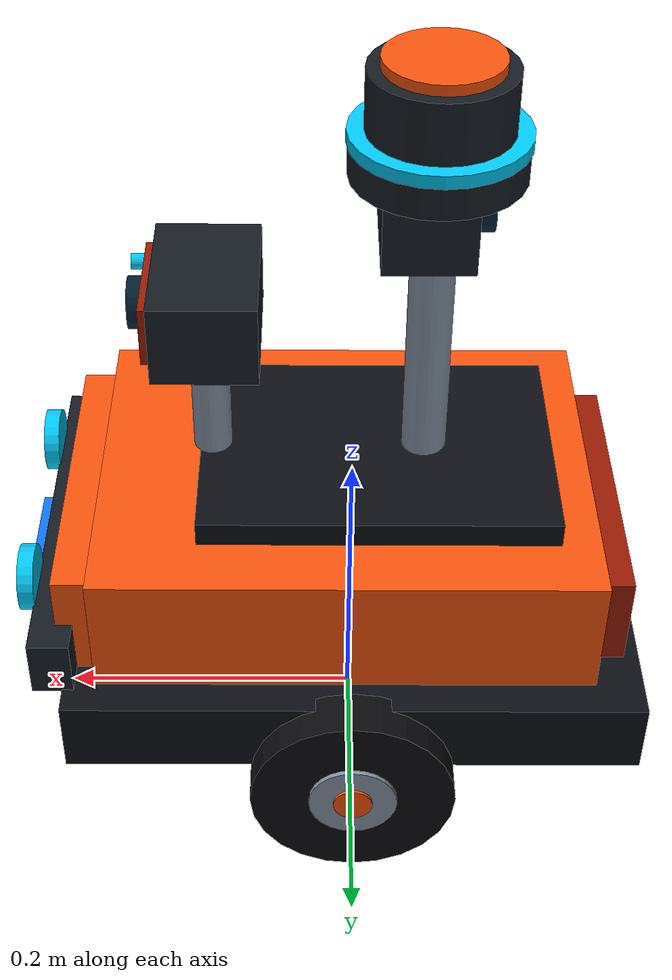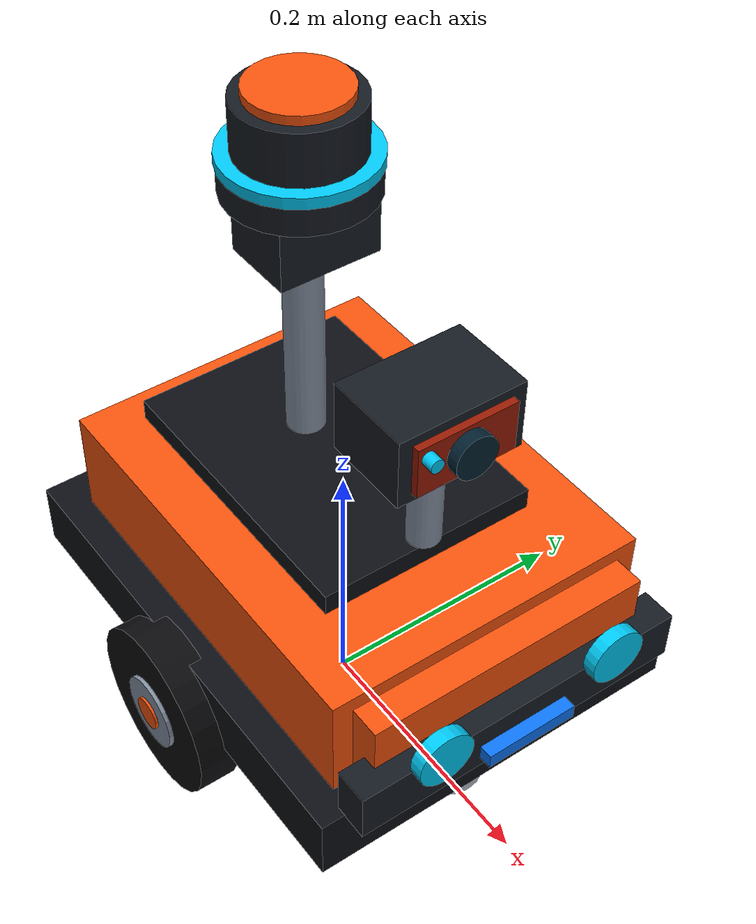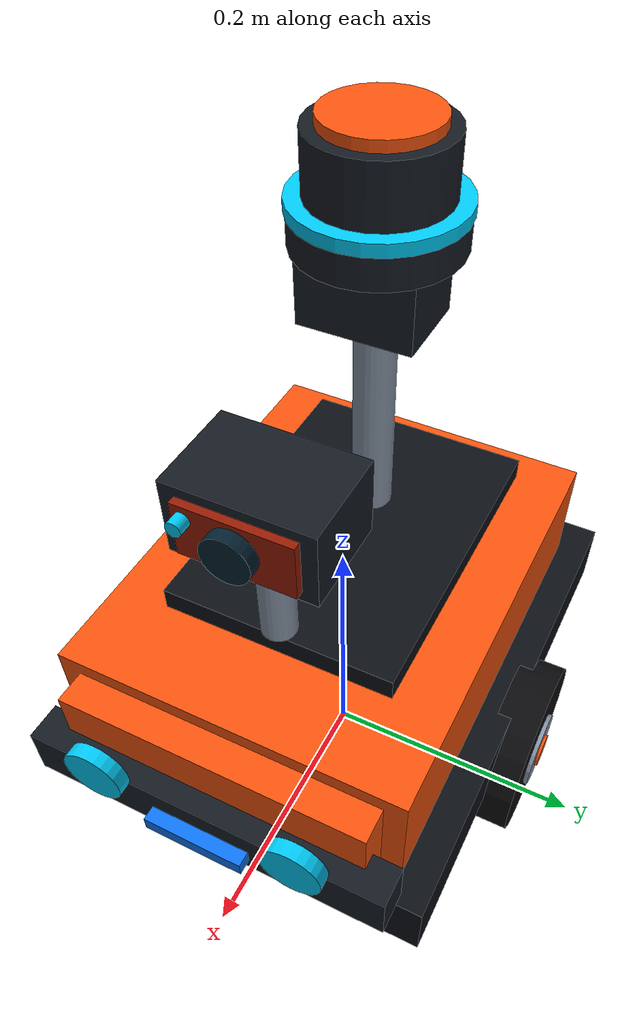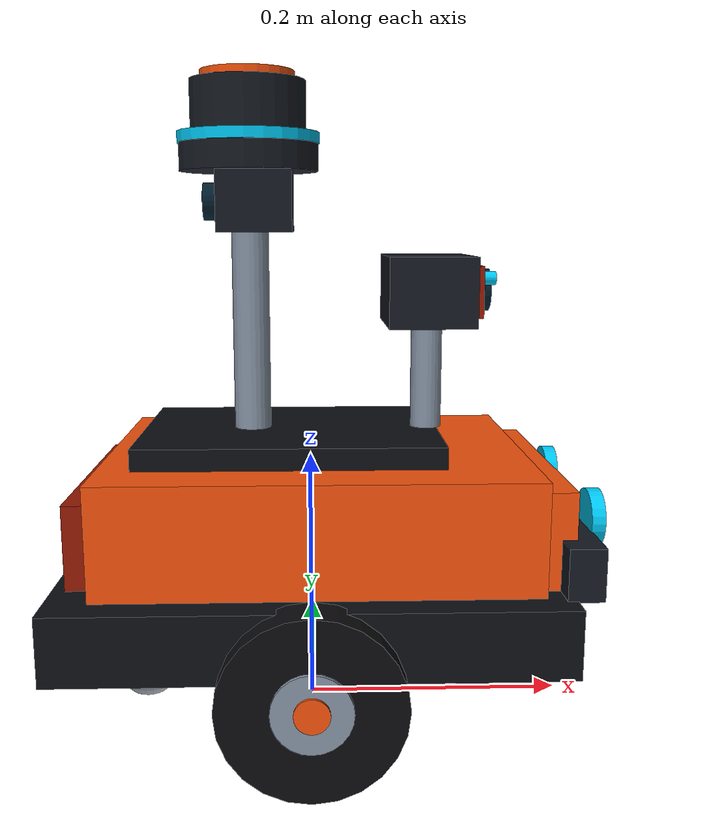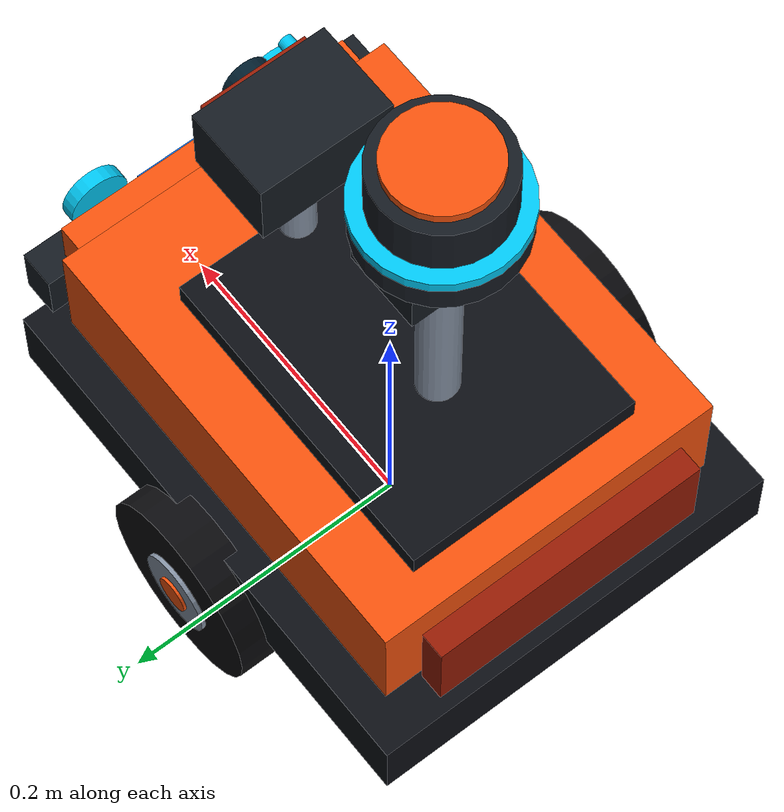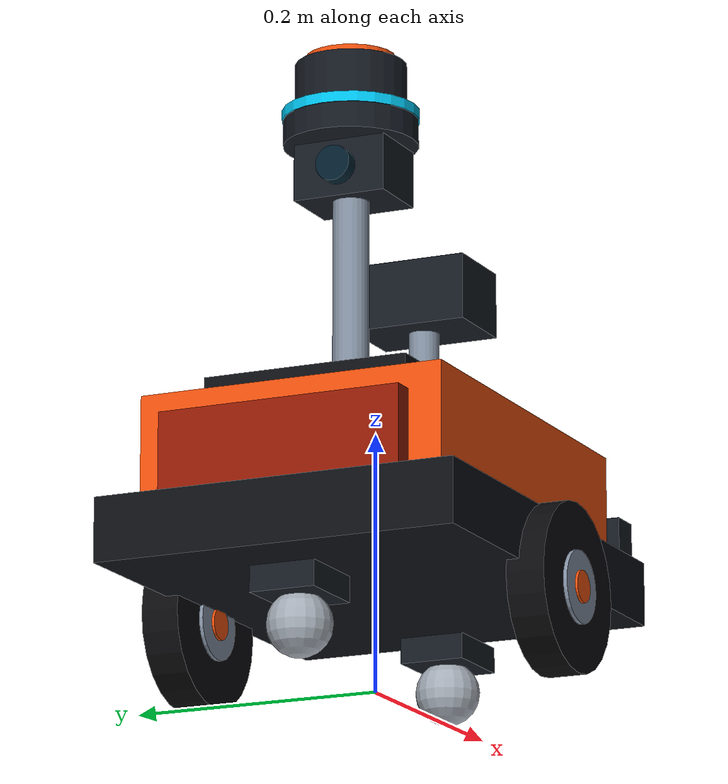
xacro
<?xml version="1.0"?>
<robot xmlns:xacro="http://www.ros.org/wiki/xacro" name="companion_robot">
  <!-- All dimensions are in metres and are intentionally easy to revise. -->
  <xacro:property name="base_length" value="0.35"/>
  <xacro:property name="base_width" value="0.28"/>
  <xacro:property name="base_height" value="0.12"/>
  <xacro:property name="base_mass" value="4.0"/>

  <xacro:property name="wheel_radius" value="0.065"/>
  <xacro:property name="wheel_width" value="0.03"/>
  <xacro:property name="wheel_separation" value="0.30"/>
  <xacro:property name="wheel_mass" value="0.35"/>

  <xacro:property name="caster_radius" value="0.025"/>
  <!-- Keep the 360-degree LiDAR above every other sensor and body part. -->
  <xacro:property name="lidar_mount_z" value="0.380"/>

  <material name="body_orange">
    <color rgba="0.95 0.32 0.05 1.0"/>
  </material>
  <material name="body_orange_dark">
    <color rgba="0.58 0.10 0.015 1.0"/>
  </material>
  <material name="wheel_black">
    <color rgba="0.04 0.04 0.05 1.0"/>
  </material>
  <material name="sensor_dark">
    <color rgba="0.08 0.10 0.13 1.0"/>
  </material>
  <material name="deck_charcoal">
    <color rgba="0.045 0.055 0.075 1.0"/>
  </material>
  <material name="front_blue">
    <color rgba="0.05 0.45 0.95 1.0"/>
  </material>
  <material name="accent_cyan">
    <color rgba="0.00 0.78 0.95 1.0"/>
  </material>
  <material name="hub_metal">
    <color rgba="0.52 0.57 0.64 1.0"/>
  </material>
  <material name="lens_glass">
    <color rgba="0.01 0.12 0.18 1.0"/>
  </material>
  <material name="caster_silver">
    <color rgba="0.65 0.68 0.72 1.0"/>
  </material>

  <!-- Inline colors avoid renderer-specific issues with named material references. -->
  <xacro:macro name="apply_material" params="material_name rgba_value">
    <material name="${material_name}">
      <color rgba="${rgba_value}"/>
    </material>
  </xacro:macro>

  <!--
    Keep one material per link. This is robust across URDF parser / RViz
    combinations and also gives every decorative part its own TF frame.
  -->
  <xacro:macro name="fixed_box_visual"
               params="name parent xyz rpy size material_name rgba_value">
    <link name="${name}_link">
      <visual name="${name}_visual">
        <geometry>
          <box size="${size}"/>
        </geometry>
        <xacro:apply_material
          material_name="${material_name}_${name}"
          rgba_value="${rgba_value}"/>
      </visual>
    </link>
    <joint name="${name}_joint" type="fixed">
      <parent link="${parent}"/>
      <child link="${name}_link"/>
      <origin xyz="${xyz}" rpy="${rpy}"/>
    </joint>
  </xacro:macro>

  <xacro:macro name="fixed_cylinder_visual"
               params="name parent xyz rpy radius length material_name rgba_value">
    <link name="${name}_link">
      <visual name="${name}_visual">
        <geometry>
          <cylinder radius="${radius}" length="${length}"/>
        </geometry>
        <xacro:apply_material
          material_name="${material_name}_${name}"
          rgba_value="${rgba_value}"/>
      </visual>
    </link>
    <joint name="${name}_joint" type="fixed">
      <parent link="${parent}"/>
      <child link="${name}_link"/>
      <origin xyz="${xyz}" rpy="${rpy}"/>
    </joint>
  </xacro:macro>

  <xacro:macro name="box_inertia" params="mass x y z">
    <inertial>
      <mass value="${mass}"/>
      <inertia
        ixx="${mass * (y * y + z * z) / 12.0}" ixy="0.0" ixz="0.0"
        iyy="${mass * (x * x + z * z) / 12.0}" iyz="0.0"
        izz="${mass * (x * x + y * y) / 12.0}"/>
    </inertial>
  </xacro:macro>

  <xacro:macro name="wheel" params="side y_offset">
    <link name="${side}_wheel_link">
      <visual name="tire">
        <origin rpy="${pi / 2.0} 0 0"/>
        <geometry>
          <cylinder radius="${wheel_radius}" length="${wheel_width}"/>
        </geometry>
        <xacro:apply_material material_name="wheel_black" rgba_value="0.04 0.04 0.05 1.0"/>
      </visual>
      <collision>
        <origin rpy="${pi / 2.0} 0 0"/>
        <geometry>
          <cylinder radius="${wheel_radius}" length="${wheel_width}"/>
        </geometry>
      </collision>
      <inertial>
        <mass value="${wheel_mass}"/>
        <inertia
          ixx="${wheel_mass * (3.0 * wheel_radius * wheel_radius + wheel_width * wheel_width) / 12.0}"
          ixy="0.0" ixz="0.0"
          iyy="${wheel_mass * wheel_radius * wheel_radius / 2.0}"
          iyz="0.0"
          izz="${wheel_mass * (3.0 * wheel_radius * wheel_radius + wheel_width * wheel_width) / 12.0}"/>
      </inertial>
    </link>

    <joint name="${side}_wheel_joint" type="continuous">
      <parent link="base_link"/>
      <child link="${side}_wheel_link"/>
      <origin xyz="0 ${y_offset} 0" rpy="0 0 0"/>
      <axis xyz="0 1 0"/>
      <limit effort="8.0" velocity="12.0"/>
      <dynamics damping="0.05" friction="0.02"/>
    </joint>

    <xacro:fixed_cylinder_visual
      name="${side}_wheel_hub"
      parent="${side}_wheel_link"
      xyz="0 0 0"
      rpy="${pi / 2.0} 0 0"
      radius="${wheel_radius * 0.43}"
      length="${wheel_width + 0.006}"
      material_name="hub_metal"
      rgba_value="0.52 0.57 0.64 1.0"/>
    <xacro:fixed_cylinder_visual
      name="${side}_wheel_cap"
      parent="${side}_wheel_link"
      xyz="0 0 0"
      rpy="${pi / 2.0} 0 0"
      radius="${wheel_radius * 0.19}"
      length="${wheel_width + 0.010}"
      material_name="body_orange"
      rgba_value="0.95 0.32 0.05 1.0"/>
  </xacro:macro>

  <!-- Ground-level reference used by localization and navigation. -->
  <link name="base_footprint"/>

  <joint name="base_footprint_joint" type="fixed">
    <parent link="base_footprint"/>
    <child link="base_link"/>
    <origin xyz="0 0 ${wheel_radius}"/>
  </joint>

  <!-- The base_link origin sits on the drive-wheel axle. -->
  <link name="base_link">
    <visual name="upper_shell">
      <origin xyz="0.005 0 0.098"/>
      <geometry>
        <box size="${base_length - 0.035} ${base_width - 0.035} 0.088"/>
      </geometry>
      <xacro:apply_material material_name="body_orange" rgba_value="0.95 0.32 0.05 1.0"/>
    </visual>
    <collision>
      <origin xyz="0 0 ${base_height / 2.0}"/>
      <geometry>
        <box size="${base_length} ${base_width} ${base_height}"/>
      </geometry>
    </collision>
    <xacro:box_inertia
      mass="${base_mass}"
      x="${base_length}"
      y="${base_width}"
      z="${base_height}"/>
  </link>

  <xacro:fixed_box_visual
    name="lower_deck"
    parent="base_link"
    xyz="0 0 0.035"
    rpy="0 0 0"
    size="${base_length + 0.015} ${base_width + 0.010} 0.050"
    material_name="deck_charcoal"
    rgba_value="0.045 0.055 0.075 1.0"/>
  <xacro:fixed_box_visual
    name="top_deck"
    parent="base_link"
    xyz="-0.015 0 0.150"
    rpy="0 0 0"
    size="0.225 0.165 0.016"
    material_name="deck_charcoal"
    rgba_value="0.045 0.055 0.075 1.0"/>
  <xacro:fixed_box_visual
    name="front_nose"
    parent="base_link"
    xyz="0.168 0 0.092"
    rpy="0 0 0"
    size="0.035 0.215 0.078"
    material_name="body_orange"
    rgba_value="0.95 0.32 0.05 1.0"/>
  <xacro:fixed_box_visual
    name="rear_accent"
    parent="base_link"
    xyz="-0.164 0 0.090"
    rpy="0 0 0"
    size="0.018 0.195 0.064"
    material_name="body_orange_dark"
    rgba_value="0.58 0.10 0.015 1.0"/>

  <!-- Blue marker makes the robot's +X (front) direction obvious. -->
  <link name="front_marker_link">
    <visual name="front_bumper">
      <geometry>
        <box size="0.026 0.255 0.038"/>
      </geometry>
      <xacro:apply_material material_name="sensor_dark" rgba_value="0.08 0.10 0.13 1.0"/>
    </visual>
  </link>
  <joint name="front_marker_joint" type="fixed">
    <parent link="base_link"/>
    <child link="front_marker_link"/>
    <origin xyz="${base_length / 2.0 + 0.013} 0 ${base_height * 0.65}"/>
  </joint>
  <xacro:fixed_cylinder_visual
    name="left_headlight"
    parent="front_marker_link"
    xyz="0.017 0.070 0.025"
    rpy="0 ${pi / 2.0} 0"
    radius="0.021"
    length="0.010"
    material_name="accent_cyan"
    rgba_value="0.00 0.78 0.95 1.0"/>
  <xacro:fixed_cylinder_visual
    name="right_headlight"
    parent="front_marker_link"
    xyz="0.017 -0.070 0.025"
    rpy="0 ${pi / 2.0} 0"
    radius="0.021"
    length="0.010"
    material_name="accent_cyan"
    rgba_value="0.00 0.78 0.95 1.0"/>
  <xacro:fixed_box_visual
    name="status_light"
    parent="front_marker_link"
    xyz="0.018 0 -0.004"
    rpy="0 0 0"
    size="0.010 0.070 0.011"
    material_name="front_blue"
    rgba_value="0.05 0.45 0.95 1.0"/>

  <xacro:wheel side="left" y_offset="${wheel_separation / 2.0}"/>
  <xacro:wheel side="right" y_offset="${-wheel_separation / 2.0}"/>

  <link name="caster_link">
    <visual name="caster_ball">
      <geometry>
        <sphere radius="${caster_radius}"/>
      </geometry>
      <xacro:apply_material material_name="caster_silver" rgba_value="0.65 0.68 0.72 1.0"/>
    </visual>
    <collision>
      <geometry>
        <sphere radius="${caster_radius}"/>
      </geometry>
    </collision>
    <inertial>
      <mass value="0.10"/>
      <inertia
        ixx="0.000025" ixy="0.0" ixz="0.0"
        iyy="0.000025" iyz="0.0" izz="0.000025"/>
    </inertial>
  </link>
  <joint name="caster_joint" type="fixed">
    <parent link="base_link"/>
    <child link="caster_link"/>
    <origin xyz="${-base_length * 0.38} 0 ${caster_radius - wheel_radius}"/>
  </joint>
  <xacro:fixed_box_visual
    name="caster_bracket"
    parent="caster_link"
    xyz="0 0 0.030"
    rpy="0 0 0"
    size="0.062 0.052 0.020"
    material_name="sensor_dark"
    rgba_value="0.08 0.10 0.13 1.0"/>

  <!-- A second caster keeps the sensor deck level around the drive-wheel axle. -->
  <link name="front_caster_link">
    <visual name="front_caster_ball">
      <geometry>
        <sphere radius="${caster_radius}"/>
      </geometry>
      <xacro:apply_material material_name="caster_silver_front" rgba_value="0.65 0.68 0.72 1.0"/>
    </visual>
    <collision>
      <geometry>
        <sphere radius="${caster_radius}"/>
      </geometry>
    </collision>
    <inertial>
      <mass value="0.10"/>
      <inertia
        ixx="0.000025" ixy="0.0" ixz="0.0"
        iyy="0.000025" iyz="0.0" izz="0.000025"/>
    </inertial>
  </link>
  <joint name="front_caster_joint" type="fixed">
    <parent link="base_link"/>
    <child link="front_caster_link"/>
    <origin xyz="${base_length * 0.38} 0 ${caster_radius - wheel_radius}"/>
  </joint>
  <xacro:fixed_box_visual
    name="front_caster_bracket"
    parent="front_caster_link"
    xyz="0 0 0.030"
    rpy="0 0 0"
    size="0.062 0.052 0.020"
    material_name="sensor_dark"
    rgba_value="0.08 0.10 0.13 1.0"/>

  <!-- Physical housing for the simulated 360-degree LiDAR sensor. -->
  <link name="lidar_link">
    <visual name="lidar_base">
      <origin xyz="0 0 -0.018"/>
      <geometry>
        <cylinder radius="0.052" length="0.020"/>
      </geometry>
      <xacro:apply_material material_name="sensor_dark" rgba_value="0.08 0.10 0.13 1.0"/>
    </visual>
    <collision>
      <origin xyz="0 0 0.010"/>
      <geometry>
        <cylinder radius="0.053" length="0.075"/>
      </geometry>
    </collision>
    <inertial>
      <mass value="0.20"/>
      <inertia
        ixx="0.000253" ixy="0.0" ixz="0.0"
        iyy="0.000253" iyz="0.0" izz="0.000203"/>
    </inertial>
  </link>
  <xacro:fixed_cylinder_visual
    name="lidar_pedestal"
    parent="base_link"
    xyz="-0.045 0 0.269"
    rpy="0 0 0"
    radius="0.014"
    length="0.222"
    material_name="hub_metal"
    rgba_value="0.52 0.57 0.64 1.0"/>
  <joint name="lidar_joint" type="fixed">
    <parent link="base_link"/>
    <child link="lidar_link"/>
    <origin xyz="-0.045 0 ${lidar_mount_z}"/>
  </joint>
  <xacro:fixed_cylinder_visual
    name="lidar_status_ring"
    parent="lidar_link"
    xyz="0 0 -0.004"
    rpy="0 0 0"
    radius="0.053"
    length="0.008"
    material_name="accent_cyan"
    rgba_value="0.00 0.78 0.95 1.0"/>
  <xacro:fixed_cylinder_visual
    name="lidar_puck"
    parent="lidar_link"
    xyz="0 0 0.018"
    rpy="0 0 0"
    radius="0.043"
    length="0.038"
    material_name="sensor_dark"
    rgba_value="0.08 0.10 0.13 1.0"/>
  <xacro:fixed_cylinder_visual
    name="lidar_cap"
    parent="lidar_link"
    xyz="0 0 0.040"
    rpy="0 0 0"
    radius="0.035"
    length="0.007"
    material_name="body_orange"
    rgba_value="0.95 0.32 0.05 1.0"/>

  <!-- Small camera mast gives the rover a clear forward-facing perception module. -->
  <link name="camera_mast_link">
    <visual>
      <geometry>
        <cylinder radius="0.012" length="0.080"/>
      </geometry>
      <xacro:apply_material material_name="hub_metal" rgba_value="0.52 0.57 0.64 1.0"/>
    </visual>
    <collision>
      <geometry>
        <cylinder radius="0.012" length="0.080"/>
      </geometry>
    </collision>
    <inertial>
      <mass value="0.08"/>
      <inertia
        ixx="0.000045" ixy="0.0" ixz="0.0"
        iyy="0.000045" iyz="0.0" izz="0.000006"/>
    </inertial>
  </link>
  <joint name="camera_mast_joint" type="fixed">
    <parent link="base_link"/>
    <child link="camera_mast_link"/>
    <origin xyz="0.090 0 0.198"/>
  </joint>

  <link name="camera_link">
    <visual name="camera_housing">
      <geometry>
        <box size="0.065 0.095 0.052"/>
      </geometry>
      <xacro:apply_material material_name="sensor_dark" rgba_value="0.08 0.10 0.13 1.0"/>
    </visual>
    <collision>
      <geometry>
        <box size="0.065 0.095 0.052"/>
      </geometry>
    </collision>
    <inertial>
      <mass value="0.18"/>
      <inertia
        ixx="0.000175" ixy="0.0" ixz="0.0"
        iyy="0.000104" iyz="0.0" izz="0.000198"/>
    </inertial>
  </link>
  <joint name="camera_joint" type="fixed">
    <parent link="camera_mast_link"/>
    <child link="camera_link"/>
    <origin xyz="0 0 0.066"/>
  </joint>
  <xacro:fixed_box_visual
    name="camera_face"
    parent="camera_link"
    xyz="0.034 0 0"
    rpy="0 0 0"
    size="0.008 0.075 0.038"
    material_name="body_orange_dark"
    rgba_value="0.58 0.10 0.015 1.0"/>
  <xacro:fixed_cylinder_visual
    name="camera_lens"
    parent="camera_link"
    xyz="0.041 0 0"
    rpy="0 ${pi / 2.0} 0"
    radius="0.016"
    length="0.012"
    material_name="lens_glass"
    rgba_value="0.01 0.12 0.18 1.0"/>
  <xacro:fixed_cylinder_visual
    name="camera_led"
    parent="camera_link"
    xyz="0.041 -0.030 0.010"
    rpy="0 ${pi / 2.0} 0"
    radius="0.005"
    length="0.012"
    material_name="accent_cyan"
    rgba_value="0.00 0.78 0.95 1.0"/>

  <!-- ROS optical convention: +Z forward, +X right, +Y down. -->
  <link name="front_camera_optical_frame"/>
  <joint name="front_camera_optical_joint" type="fixed">
    <parent link="camera_link"/>
    <child link="front_camera_optical_frame"/>
    <origin xyz="0.041 0 0" rpy="${-pi / 2.0} 0 ${-pi / 2.0}"/>
  </joint>

  <!-- Rear camera watches the docking marker while the robot reverses. -->
  <link name="rear_camera_link">
    <visual name="rear_camera_housing">
      <geometry>
        <box size="0.055 0.075 0.045"/>
      </geometry>
      <xacro:apply_material material_name="sensor_dark" rgba_value="0.08 0.10 0.13 1.0"/>
    </visual>
  </link>
  <joint name="rear_camera_joint" type="fixed">
    <parent link="base_link"/>
    <child link="rear_camera_link"/>
    <origin xyz="-0.040 0 0.330" rpy="0 0 ${pi}"/>
  </joint>
  <xacro:fixed_cylinder_visual
    name="rear_camera_lens"
    parent="rear_camera_link"
    xyz="0.033 0 0"
    rpy="0 ${pi / 2.0} 0"
    radius="0.014"
    length="0.012"
    material_name="lens_glass"
    rgba_value="0.01 0.12 0.18 1.0"/>

  <!-- ROS optical convention: +Z forward, +X right, +Y down. -->
  <link name="rear_camera_optical_frame"/>
  <joint name="rear_camera_optical_joint" type="fixed">
    <parent link="rear_camera_link"/>
    <child link="rear_camera_optical_frame"/>
    <origin xyz="0.033 0 0" rpy="${-pi / 2.0} 0 ${-pi / 2.0}"/>
  </joint>

  <!-- IMU frame is centered inside the chassis and intentionally has no geometry. -->
  <link name="imu_link"/>
  <joint name="imu_joint" type="fixed">
    <parent link="base_link"/>
    <child link="imu_link"/>
    <origin xyz="0 0 ${base_height / 2.0}"/>
  </joint>

  <gazebo reference="imu_link">
    <sensor name="imu_sensor" type="imu">
      <topic>/imu/data_raw</topic>
      <gz_frame_id>imu_link</gz_frame_id>
      <update_rate>50</update_rate>
      <always_on>true</always_on>
      <visualize>false</visualize>
      <imu>
        <angular_velocity>
          <x>
            <noise type="gaussian">
              <mean>0.0</mean>
              <stddev>0.008</stddev>
              <bias_mean>0.0002</bias_mean>
              <bias_stddev>0.0001</bias_stddev>
              <dynamic_bias_stddev>0.00002</dynamic_bias_stddev>
              <dynamic_bias_correlation_time>100.0</dynamic_bias_correlation_time>
            </noise>
          </x>
          <y>
            <noise type="gaussian">
              <mean>0.0</mean>
              <stddev>0.008</stddev>
              <bias_mean>0.0002</bias_mean>
              <bias_stddev>0.0001</bias_stddev>
              <dynamic_bias_stddev>0.00002</dynamic_bias_stddev>
              <dynamic_bias_correlation_time>100.0</dynamic_bias_correlation_time>
            </noise>
          </y>
          <z>
            <noise type="gaussian">
              <mean>0.0</mean>
              <stddev>0.010</stddev>
              <bias_mean>0.0003</bias_mean>
              <bias_stddev>0.00015</bias_stddev>
              <dynamic_bias_stddev>0.00003</dynamic_bias_stddev>
              <dynamic_bias_correlation_time>100.0</dynamic_bias_correlation_time>
            </noise>
          </z>
        </angular_velocity>
        <linear_acceleration>
          <x>
            <noise type="gaussian">
              <mean>0.0</mean>
              <stddev>0.060</stddev>
              <bias_mean>0.010</bias_mean>
              <bias_stddev>0.005</bias_stddev>
              <dynamic_bias_stddev>0.001</dynamic_bias_stddev>
              <dynamic_bias_correlation_time>60.0</dynamic_bias_correlation_time>
            </noise>
          </x>
          <y>
            <noise type="gaussian">
              <mean>0.0</mean>
              <stddev>0.060</stddev>
              <bias_mean>0.010</bias_mean>
              <bias_stddev>0.005</bias_stddev>
              <dynamic_bias_stddev>0.001</dynamic_bias_stddev>
              <dynamic_bias_correlation_time>60.0</dynamic_bias_correlation_time>
            </noise>
          </y>
          <z>
            <noise type="gaussian">
              <mean>0.0</mean>
              <stddev>0.080</stddev>
              <bias_mean>0.015</bias_mean>
              <bias_stddev>0.008</bias_stddev>
              <dynamic_bias_stddev>0.002</dynamic_bias_stddev>
              <dynamic_bias_correlation_time>60.0</dynamic_bias_correlation_time>
            </noise>
          </z>
        </linear_acceleration>
      </imu>
    </sensor>
  </gazebo>

  <!-- 360-degree simulated LiDAR mounted inside the physical LiDAR housing. -->
  <gazebo reference="lidar_link">
    <sensor name="lidar_sensor" type="gpu_lidar">
      <pose>0 0 0.020 0 0 0</pose>
      <topic>/scan</topic>
      <gz_frame_id>lidar_link</gz_frame_id>
      <update_rate>10</update_rate>
      <always_on>true</always_on>
      <visualize>true</visualize>
      <lidar>
        <scan>
          <horizontal>
            <samples>360</samples>
            <resolution>1</resolution>
            <min_angle>${-pi}</min_angle>
            <max_angle>${pi}</max_angle>
          </horizontal>
        </scan>
        <range>
          <min>0.12</min>
          <max>8.0</max>
          <resolution>0.01</resolution>
        </range>
        <noise>
          <type>gaussian</type>
          <mean>0.0</mean>
          <!-- A small range error prevents localization from relying on
               unrealistically perfect simulated LiDAR measurements. -->
          <stddev>0.008</stddev>
        </noise>
      </lidar>
    </sensor>
  </gazebo>

  <!-- Forward RGB stream for simulated person detection and tracking. -->
  <gazebo reference="camera_link">
    <sensor name="front_person_camera" type="camera">
      <pose>0.041 0 0 0 0 0</pose>
      <topic>/front_camera</topic>
      <gz_frame_id>front_camera_optical_frame</gz_frame_id>
      <update_rate>8</update_rate>
      <always_on>true</always_on>
      <visualize>false</visualize>
      <camera>
        <horizontal_fov>1.3962634</horizontal_fov>
        <image>
          <width>424</width>
          <height>240</height>
          <format>R8G8B8</format>
        </image>
        <clip>
          <near>0.05</near>
          <far>6.0</far>
        </clip>
        <noise>
          <type>gaussian</type>
          <mean>0.0</mean>
          <stddev>0.004</stddev>
        </noise>
      </camera>
    </sensor>
  </gazebo>

  <gazebo reference="rear_camera_link">
    <sensor name="rear_docking_camera" type="camera">
      <pose>0.033 0 0 0 0 0</pose>
      <topic>/rear_camera</topic>
      <gz_frame_id>rear_camera_optical_frame</gz_frame_id>
      <update_rate>10</update_rate>
      <always_on>true</always_on>
      <visualize>false</visualize>
      <camera>
        <horizontal_fov>1.3962634</horizontal_fov>
        <image>
          <width>640</width>
          <height>480</height>
          <format>R8G8B8</format>
        </image>
        <clip>
          <near>0.04</near>
          <far>5.0</far>
        </clip>
        <noise>
          <type>gaussian</type>
          <mean>0.0</mean>
          <!-- Keep the marker readable while still exercising the detector
               against image noise during the precision-docking phase. -->
          <stddev>0.004</stddev>
        </noise>
      </camera>
    </sensor>
  </gazebo>

  <!-- Gazebo wheel contact parameters. The caster stays easy to slide sideways. -->
  <gazebo reference="left_wheel_link">
    <mu1>1.0</mu1>
    <mu2>1.0</mu2>
  </gazebo>
  <gazebo reference="right_wheel_link">
    <mu1>1.0</mu1>
    <mu2>1.0</mu2>
  </gazebo>
  <gazebo reference="caster_link">
    <mu1>0.05</mu1>
    <mu2>0.05</mu2>
  </gazebo>
  <gazebo reference="front_caster_link">
    <mu1>0.05</mu1>
    <mu2>0.05</mu2>
  </gazebo>

  <!--
    Gazebo systems attached to the spawned model. DiffDrive converts a Twist
    command into left/right wheel speeds and publishes wheel odometry.
  -->
  <gazebo>
    <plugin filename="gz-sim-diff-drive-system"
            name="gz::sim::systems::DiffDrive">
      <left_joint>left_wheel_joint</left_joint>
      <right_joint>right_wheel_joint</right_joint>
      <wheel_separation>${wheel_separation}</wheel_separation>
      <wheel_radius>${wheel_radius}</wheel_radius>

      <topic>/cmd_vel</topic>
      <!-- Raw encoder-style odometry is covariance-annotated before fusion. -->
      <odom_topic>/wheel_odom/raw</odom_topic>
      <tf_topic>/wheel_tf</tf_topic>
      <frame_id>odom</frame_id>
      <child_frame_id>base_footprint</child_frame_id>
      <odom_publish_frequency>30</odom_publish_frequency>

      <max_linear_velocity>0.30</max_linear_velocity>
      <min_linear_velocity>-0.30</min_linear_velocity>
      <max_angular_velocity>1.0</max_angular_velocity>
      <min_angular_velocity>-1.0</min_angular_velocity>
      <max_linear_acceleration>0.8</max_linear_acceleration>
      <min_linear_acceleration>-0.8</min_linear_acceleration>
      <max_angular_acceleration>2.5</max_angular_acceleration>
      <min_angular_acceleration>-2.5</min_angular_acceleration>
    </plugin>

    <!--
      Ground truth remains available strictly for offline error comparison.
      Its TF topic is intentionally not bridged: the EKF exclusively owns
      odom -> base_footprint.
    -->
    <plugin filename="gz-sim-odometry-publisher-system"
            name="gz::sim::systems::OdometryPublisher">
      <odom_frame>odom</odom_frame>
      <robot_base_frame>base_footprint</robot_base_frame>
      <odom_topic>/ground_truth/odom</odom_topic>
      <tf_topic>/ground_truth/tf</tf_topic>
      <odom_publish_frequency>30</odom_publish_frequency>
      <dimensions>2</dimensions>
      <gaussian_noise>0.0</gaussian_noise>
    </plugin>

    <plugin filename="gz-sim-joint-state-publisher-system"
            name="gz::sim::systems::JointStatePublisher"/>
  </gazebo>
</robot>
